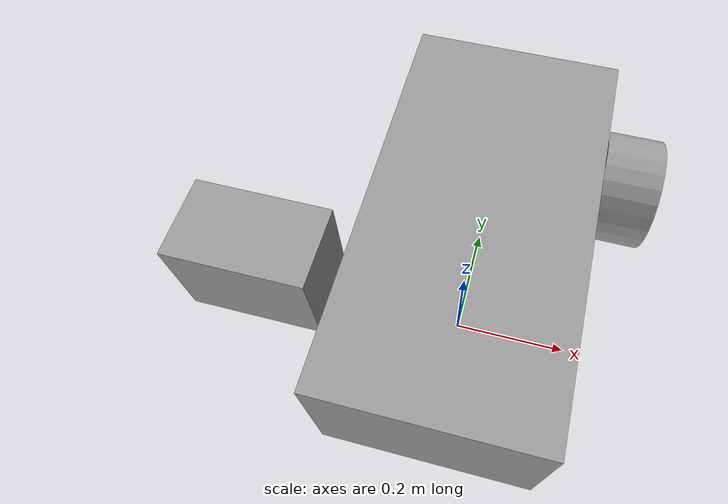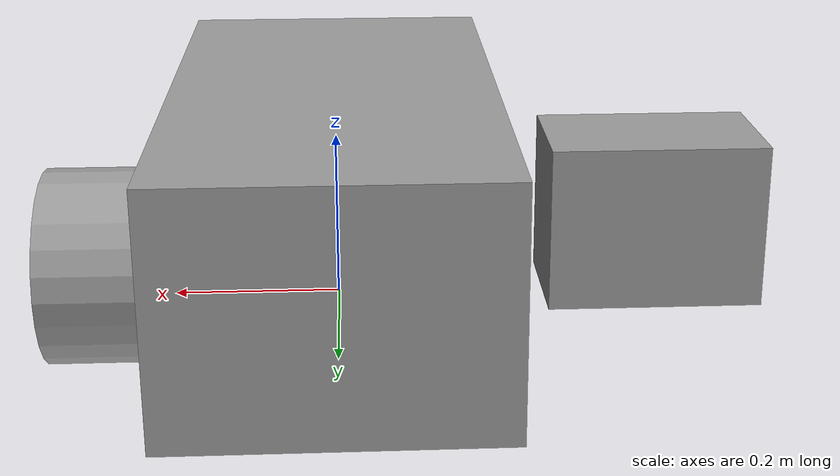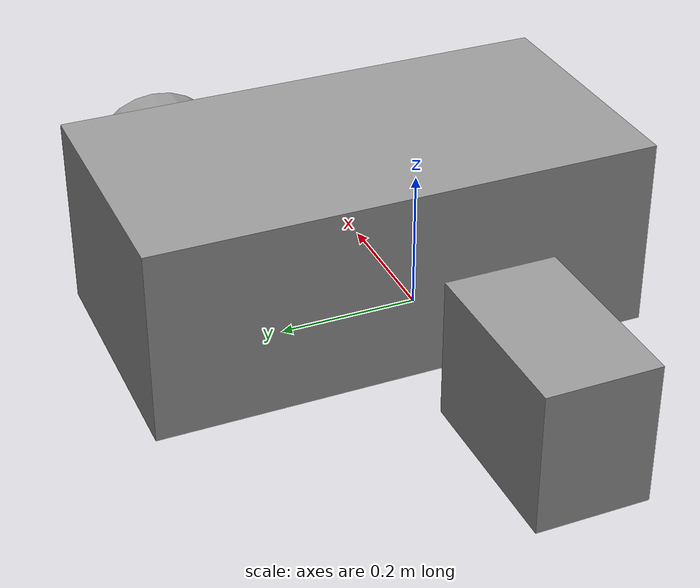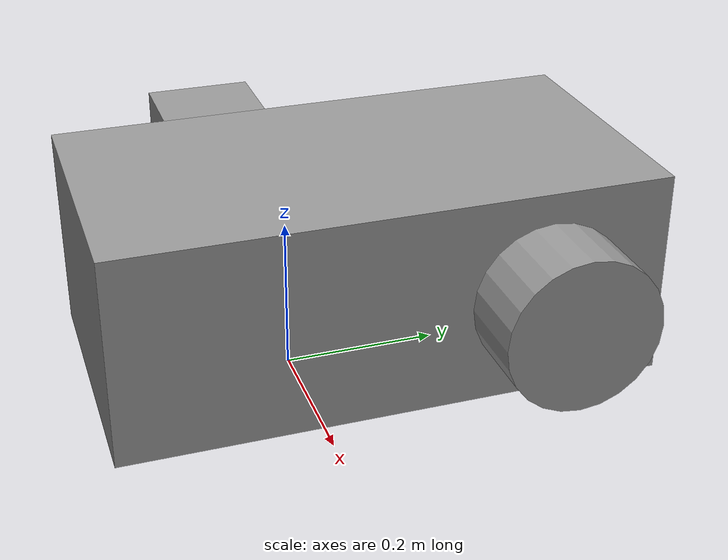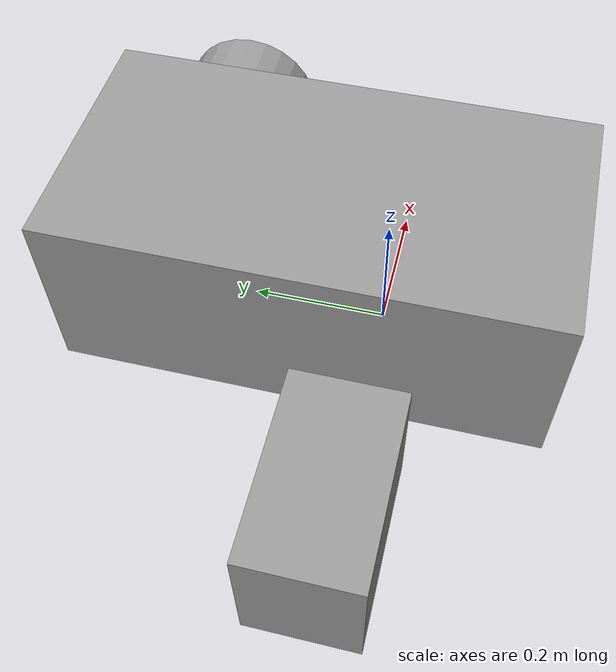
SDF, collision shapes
<?xml version="1.0" ?>
<sdf version="1.5">

 <model name="motor_gearbox">

    <model name="motor">
      <pose>-0.38 0 0.1 0 0 0</pose>
      <link name="link">
        <pose>0.0 0 0.0 0 0 0</pose>
        <inertial>
          <mass>3</mass>
          <inertia>
            <ixx>0.01</ixx>
            <ixy>0</ixy>
            <ixz>0</ixz>
            <iyy>0.01</iyy>
            <iyz>0</iyz>
            <izz>0.01</izz>
          </inertia>
        </inertial>
        <self_collide>false</self_collide>
        <collision name="collision">
          <pose>0.0 0 0.0 0 0 0</pose>
          <geometry>
            <box>
              <size>0.258 0.155 0.198</size>
            </box>
          </geometry>
        </collision>
        <visual name="visual">
          <pose>0 0 0.0 0 0 0</pose>
          <geometry>
            <mesh>
              <uri>model://motor/meshes/motor.dae</uri>
              <scale>0.01 0.01 0.01</scale>
            </mesh>
          </geometry>
          <material>
            <script>
              <uri>file://media/materials/scripts/gazebo.material</uri>
              <name>Gazebo/Grey</name>
            </script>
          </material>
        </visual>
      </link>

      <link name="motor_core_link">
        <pose>0.002 0 0.0 0 0 0</pose>
        <self_collide>false</self_collide>
        <gravity>false</gravity>
        <inertial>
          <mass>0.1</mass>
          <inertia>
            <ixx>0.0001</ixx>
            <ixy>0</ixy>
            <ixz>0</ixz>
            <iyy>0.0001</iyy>
            <iyz>0</iyz>
            <izz>0.0001</izz>
          </inertia>
        </inertial>
        <collision name="collision">
          <pose>0.0 0 0.0 0 1.57079632679 0</pose>
          <geometry>
            <cylinder>
              <radius>0.05</radius>
              <length>0.05</length>
            </cylinder>
          </geometry>
        </collision>
        <visual name="visual">
          <pose>0.0 0 0.0 0 1.57079632679 0</pose>
          <geometry>
            <cylinder>
              <radius>0.05</radius>
              <length>0.05</length>
            </cylinder>
          </geometry>
          <material>
            <script>
              <uri>file://media/materials/scripts/gazebo.material</uri>
              <name>Gazebo/Grey</name>
            </script>
          </material>
        </visual>
      </link>

      <link name="motor_shaft_link">
        <pose>0.002 0 0.0 0 0 0</pose>
        <self_collide>false</self_collide>
        <gravity>false</gravity>
          <inertial>
            <mass>0.05</mass>
            <inertia>
              <ixx>0.0001</ixx>
              <ixy>0</ixy>
              <ixz>0</ixz>
              <iyy>0.0001</iyy>
              <iyz>0</iyz>
              <izz>0.0003</izz>
            </inertia>
          </inertial>
        <collision name="collision">
          <pose>0.0 0 0.0 0 1.57079632679 0</pose>
          <geometry>
            <cylinder>
              <radius>0.005</radius>
              <length>0.20</length>
            </cylinder>
          </geometry>
        </collision>
        <visual name='debug_vis'>
          <pose>0.15 0.0 0.0 0 0.0 0.0</pose>
          <geometry>
            <box>
              <size>.02 .02 .02</size>
            </box>
          </geometry>
        </visual>

        <visual name="visual">
          <pose>0.0 0 0.0 0 1.57079632679 0</pose>
          <geometry>
            <cylinder>
              <radius>0.005</radius>
              <length>0.20</length>
            </cylinder>
          </geometry>
          <material>
            <script>
              <uri>file://media/materials/scripts/gazebo.material</uri>
              <name>Gazebo/Wood</name>
            </script>
          </material>
        </visual>
        <velocity_decay>
          <angular>0.0001</angular>
        </velocity_decay>
      </link>

      <joint name="motor_shaft_joint" type="revolute">
        <parent>motor_core_link</parent>
        <child>motor_shaft_link</child>
        <axis>
          <xyz>1 0 0</xyz>
          <limit>
            <lower>-1000000</lower>
            <upper>1000000</upper>
          </limit>
          <dynamics>
            <friction>0.000001</friction>
            <damping>0.0001</damping>
          </dynamics>
        </axis>
      </joint>

      <joint name="motor_joint" type="fixed">
        <parent>motor_core_link</parent>
        <child>link</child>
      </joint>

      <plugin filename="libMotorPlugin.so" name="motor">
        <port>
          <name>shaft</name>
          <type>mechanical</type>
        </port>
        <port>
          <name>connector0</name>
          <type>electrical</type>
        </port>
        <port>
          <name>connector1</name>
          <type>electrical</type>
        </port>

        <properties>
          <resistance>5</resistance>
          <back_emf>0.0064</back_emf>
          <torque_constant>0.0064</torque_constant>
        </properties>

        <shaft_joint>motor_shaft_joint</shaft_joint>
      </plugin>
    </model>

    <model name="axle_wheels">
      <pose>0.24 0.28 0.15 0 0 0</pose>
      <link name="link">
        <inertial>
          <mass>0.1</mass>
          <inertia>
            <ixx>0.0001</ixx>
            <ixy>0</ixy>
            <ixz>0</ixz>
            <iyy>0.0001</iyy>
            <iyz>0</iyz>
            <izz>0.0003</izz>
          </inertia>
        </inertial>
        <collision name="collision">
          <pose>0 0 0.0 0 1.57079632679 0</pose>
          <geometry>
            <cylinder>
              <radius>0.10</radius>
              <length>0.10</length>
            </cylinder>
          </geometry>
        </collision>
        <visual name="visual">
          <pose>0 0.0 0.00 0  1.57079632679 0</pose>
          <geometry>
            <cylinder>
              <radius>0.1</radius>
              <length>0.1</length>
            </cylinder>
          </geometry>
          <material>
            <script>
              <uri>file://media/materials/scripts/gazebo.material</uri>
              <name>Gazebo/Grey</name>
            </script>
          </material>
        </visual>
        <visual name='debug_vis'>
          <pose>0.06 0.0 0.0 0 0.0 0.0</pose>
          <geometry>
            <box>
              <size>.02 .02 .02</size>
            </box>
          </geometry>
        </visual>
      </link>
    </model>

    <model name="gearbox">
      <pose>0 0.0 0.15 0 0 0</pose>
      <link name="link">
        <inertial>
          <mass>5</mass>
          <inertia>
            <ixx>0.1</ixx>
            <ixy>0</ixy>
            <ixz>0</ixz>
            <iyy>0.1</iyy>
            <iyz>0</iyz>
            <izz>0.1</izz>
          </inertia>
        </inertial>
        <collision name="collision">
          <pose>0 0.09 0.0 0 0 0</pose>
          <geometry>
            <box>
              <size>0.365 0.70 0.270</size>
            </box>
          </geometry>
        </collision>
        <visual name="visual">
          <pose>0 0 0.0 1.57079632679 0 1.57079632679</pose>
          <geometry>
            <mesh>
              <uri>model://gearbox/meshes/gearbox.dae</uri>
              <scale>0.01 0.01 0.01</scale>
            </mesh>
          </geometry>
          <material>
            <script>
              <uri>file://media/materials/scripts/gazebo.material</uri>
              <name>Gazebo/Grey</name>
            </script>
          </material>
        </visual>
      </link>
      <plugin filename="libGearboxPlugin.so" name="gearbox">
        <properties>
          <parent>axle_wheels::link</parent>
          <child>motor::motor_shaft_link</child>
          <gear_ratio>1.0</gear_ratio>
          <efficiency>0.95</efficiency>
        </properties>
      </plugin>
    </model>

    <joint name="gearbox_motor_joint" type="fixed">
      <parent>gearbox::link</parent>
      <child>motor::link</child>
    </joint>

    <joint name="gearbox_axle_joint" type="revolute">
      <parent>gearbox::link</parent>
      <child>axle_wheels::link</child>
      <axis>
        <xyz>1 0 0</xyz>
        <limit>
          <lower>-1000000000000000</lower>
          <upper>1000000000000000</upper>
        </limit>
      </axis>
    </joint>
  </model>

</sdf>
